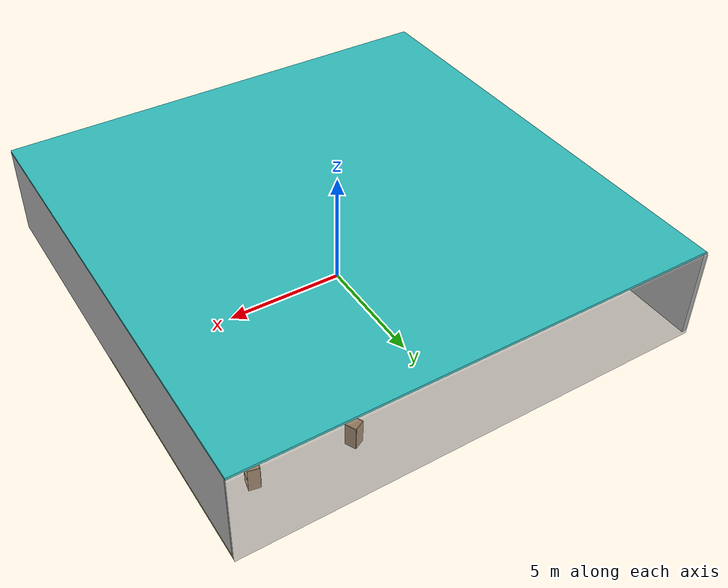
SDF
<sdf version="1.4">
 <world name="default">
  <physics type="ode">
   <max_step_size>0.001</max_step_size>
   <real_time_factor>1</real_time_factor>
   <real_time_update_rate>1000</real_time_update_rate>
   <gravity>0 0 -9.8</gravity>
  </physics>
  <scene><ambient>0.4 0.4 0.4 1</ambient><background>0.7 0.7 0.7 1</background><shadows>1</shadows></scene>
  <model name="Surrounding">
   <static>1</static>
   <link name="Ceiling">
    <collision name="Ceiling_Collision"><geometry><box><size>20 20 0.1</size></box></geometry></collision>
    <visual name="Ceiling_Visual">
     <geometry><box><size>20 20 0.1</size></box></geometry>
     <material>
      <script>
       <uri>file://media/materials/scripts/gazebo.material</uri>
       <name>Gazebo/TurquoiseGlowOutline</name>
      </script>
     </material>
    </visual>
    <pose>0 0 4.05 0 0 0</pose>
   </link>
   <link name="Wall_South">
    <collision name="Wall_South_Collision">
     <geometry><box><size>20 0 4</size></box></geometry>
     <pose>0 0 2 0 -0 0</pose>
    </collision>
    <visual name="Wall_South_Visual">
     <pose>0 0 2 0 -0 0</pose>
     <geometry><box><size>20 0 4</size></box></geometry>
     <material>
      <script><uri>file://media/materials/scripts/gazebo.material</uri><name>Gazebo/Purple</name></script>
     </material>
    </visual>
    <velocity_decay><linear>0</linear><angular>0</angular></velocity_decay>
    <pose>0 -10 0 0 -0 0</pose>
   </link>
   <link name="Wall_East">
    <collision name="Wall_21_Collision">
     <geometry><box><size>20 0 4</size></box></geometry>
     <pose>0 0 2 0 -0 0</pose>
    </collision>
    <visual name="Wall_21_Visual">
     <pose>0 0 2 0 -0 0</pose>
     <geometry><box><size>20 0 4</size></box></geometry>
     <material>
      <script><uri>file://media/materials/scripts/gazebo.material</uri><name>Gazebo/PioneerBody</name></script>
     </material>
    </visual>
    <velocity_decay><linear>0</linear><angular>0</angular></velocity_decay>
    <pose>10 0 0 0 -0 1.5708</pose>
   </link>
   <link name="Wall_North">
    <collision name="Wall_22_Collision">
     <geometry><box><size>20 0.2 4</size></box></geometry>
     <pose>0 0 2 0 -0 0</pose>
    </collision>
    <visual name="Wall_22_Visual">
     <pose>0 0 2 0 -0 0</pose>
     <geometry><box><size>20 0.2 4</size></box></geometry>
     <material>
      <script><uri>file://media/materials/scripts/gazebo.material</uri><name>Gazebo/GreyTransparent</name></script>
     </material>
    </visual>
    <velocity_decay><linear>0</linear><angular>0</angular></velocity_decay>
    <pose>0 10 0 0 -0 0</pose>
   </link>
   <link name="Wall_West">
    <collision name="Wall_23_Collision">
     <geometry><box><size>20 0.2 4</size></box></geometry>
     <pose>0 0 2 0 -0 0</pose>
    </collision>
    <visual name="Wall_23_Visual">
     <pose>0 0 2 0 -0 0</pose>
     <geometry><box><size>20 0.2 4</size></box></geometry>
     <material>
      <script><uri>file://media/materials/scripts/gazebo.material</uri><name>Gazebo/PioneerBody</name></script>
     </material>
    </visual>
    <velocity_decay><linear>0</linear><angular>0</angular></velocity_decay>
    <pose>-10 0 0 0 0 -1.5708</pose>
   </link>
   <link name="Ground_link">
    <collision name="collision">
     <pose>0 0 .05 0 -0 0</pose>
     <geometry><box><size>20 20 0.1</size></box></geometry>
    </collision>
    <visual name="visual">
     <pose>0 0 .05 0 -0 0</pose>
     <geometry><box><size>20 20 0.1</size></box></geometry>
     <material>
      <script>
       <uri>file://media/materials/scripts/gazebo.material</uri>
       <name>Gazebo/YellowTransparent</name>
      </script>
     </material>
    </visual>
   </link>
   <static>1</static>
  </model>
  <spherical_coordinates>
   <surface_model>EARTH_WGS84</surface_model>
   <latitude_deg>0</latitude_deg>
   <longitude_deg>0</longitude_deg>
   <elevation>0</elevation>
   <heading_deg>0</heading_deg>
  </spherical_coordinates>
  <light name="lightball_0" type="diffuse">
   <diffuse>0.8 0.8 0.8 1</diffuse>
   <specular>0.2 0.2 0.2 1</specular>
   <attenuation>
    <range>100</range>
    <constant>0.7</constant>
    <linear>0.01</linear>
    <quadratic>0.001</quadratic>
   </attenuation>
   <direction>-0.5 0.1 -0.9</direction>
   <pose>5.39996741589 0.641372468161 1.30068168155 0 0 0</pose>
  </light>
  <light name="lightball_1" type="diffuse">
   <diffuse>0.8 0.8 0.8 1</diffuse>
   <specular>0.2 0.2 0.2 1</specular>
   <attenuation>
    <range>100</range>
    <constant>0.7</constant>
    <linear>0.01</linear>
    <quadratic>0.001</quadratic>
   </attenuation>
   <direction>-0.5 0.1 -0.9</direction>
   <pose>-2.72451541829 6.69967901106 1.99906732025 0 0 0</pose>
  </light>
  <light name="lightball_2" type="diffuse">
   <diffuse>0.8 0.8 0.8 1</diffuse>
   <specular>0.2 0.2 0.2 1</specular>
   <attenuation>
    <range>100</range>
    <constant>0.7</constant>
    <linear>0.01</linear>
    <quadratic>0.001</quadratic>
   </attenuation>
   <direction>-0.5 0.1 -0.9</direction>
   <pose>-3.40741765099 -6.93740097523 2.97917322328 0 0 0</pose>
  </light>
  <light name="lightball_3" type="diffuse">
   <diffuse>0.8 0.8 0.8 1</diffuse>
   <specular>0.2 0.2 0.2 1</specular>
   <attenuation>
    <range>100</range>
    <constant>0.7</constant>
    <linear>0.01</linear>
    <quadratic>0.001</quadratic>
   </attenuation>
   <direction>-0.5 0.1 -0.9</direction>
   <pose>2.32718067894 -7.77799471431 3.88932591941 0 0 0</pose>
  </light>
  <light name="lightball_4" type="diffuse">
   <diffuse>0.8 0.8 0.8 1</diffuse>
   <specular>0.2 0.2 0.2 1</specular>
   <attenuation>
    <range>100</range>
    <constant>0.7</constant>
    <linear>0.01</linear>
    <quadratic>0.001</quadratic>
   </attenuation>
   <direction>-0.5 0.1 -0.9</direction>
   <pose>5.41690169276 -1.01107305077 1.38360521739 0 0 0</pose>
  </light>
  <light name="lightball_5" type="diffuse">
   <diffuse>0.8 0.8 0.8 1</diffuse>
   <specular>0.2 0.2 0.2 1</specular>
   <attenuation>
    <range>100</range>
    <constant>0.7</constant>
    <linear>0.01</linear>
    <quadratic>0.001</quadratic>
   </attenuation>
   <direction>-0.5 0.1 -0.9</direction>
   <pose>0.0736362733127 -1.8119491227 3.2174590629 0 0 0</pose>
  </light>
  <light name="lightball_6" type="diffuse">
   <diffuse>0.8 0.8 0.8 1</diffuse>
   <specular>0.2 0.2 0.2 1</specular>
   <attenuation>
    <range>100</range>
    <constant>0.7</constant>
    <linear>0.01</linear>
    <quadratic>0.001</quadratic>
   </attenuation>
   <direction>-0.5 0.1 -0.9</direction>
   <pose>0.754357523546 -5.21052361104 1.20733968797 0 0 0</pose>
  </light>
  <light name="lightball_7" type="diffuse">
   <diffuse>0.8 0.8 0.8 1</diffuse>
   <specular>0.2 0.2 0.2 1</specular>
   <attenuation>
    <range>100</range>
    <constant>0.7</constant>
    <linear>0.01</linear>
    <quadratic>0.001</quadratic>
   </attenuation>
   <direction>-0.5 0.1 -0.9</direction>
   <pose>1.04369001138 -6.66032851946 1.96549388362 0 0 0</pose>
  </light>
  <include><uri>model://cabinet</uri><pose>-5.06894675075 5.61578020875 0 0 0 0.636302996695</pose></include>
  <include>
   <uri>model://construction_cone</uri>
   <pose>-0.496998084636 -3.57336233797 0 0 0 0.812208890855</pose>
  </include>
  <include><uri>model://cabinet</uri><pose>4.15732554397 7.92591261412 0 0 0 2.02806860386</pose></include>
  <include><uri>model://cabinet</uri><pose>8.07429520239 7.6852194659 0 0 0 2.93964948654</pose></include>
 </world>
</sdf>

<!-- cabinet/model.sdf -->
<sdf version="1.5">
  <model name="cabinet">
    <static>true</static>
    <link name="cabinet_bottom_plate">
      <inertial>
        <pose>0 0 -1 0 0 0</pose>
        <inertia>
          <ixx>2.050000</ixx>
          <ixy>0</ixy>
          <ixz>0</ixz>
          <iyy>2.050000</iyy>
          <iyz>0</iyz>
          <izz>2.050000</izz>
        </inertia>
        <mass>25.000000</mass>
      </inertial>
      <collision name="cabinet_bottom_plate_geom">
        <pose>0 0 0.010000 0 0 0</pose>
        <geometry>
          <box>
            <size>0.450000 0.450000 0.020000</size>
          </box>
        </geometry>
      </collision>
      <visual name="cabinet_bottom_plate_geom_visual">
        <pose>0 0 0.010000 0 0 0</pose>
        <geometry>
          <box>
            <size>0.450000 0.450000 0.020000</size>
          </box>
        </geometry>
        <material>
          <script>
            <uri>model://media/materials/scripts/gazebo.material</uri>
            <name>Gazebo/Wood</name>
          </script>
        </material>
      </visual>
      <collision name="cabinet_bottom_plate_geom_cabinet_back_plate">
        <pose>0.235000 0 0.510000 0 0 0</pose>
        <geometry>
          <box>
            <size>0.020000 0.450000 1.020000</size>
          </box>
        </geometry>
      </collision>
      <visual name="cabinet_bottom_plate_geom_cabinet_back_plate_visual">
        <pose>0.235000 0 0.510000 0 0 0</pose>
        <geometry>
          <box>
            <size>0.020000 0.450000 1.020000</size>
          </box>
        </geometry>
        <material>
          <script>
            <uri>model://media/materials/scripts/gazebo.material</uri>
            <name>Gazebo/Wood</name>
          </script>
        </material>
      </visual>
      <collision name="cabinet_bottom_plate_geom_cabinet_left_plate">
        <pose>0 0.235000 0.510000 0 0 0</pose>
        <geometry>
          <box>
            <size>0.450000 0.020000 1.020000</size>
          </box>
        </geometry>
      </collision>
      <visual name="cabinet_bottom_plate_geom_cabinet_left_plate_visual">
        <pose>0 0.235000 0.510000 0 0 0</pose>
        <geometry>
          <box>
            <size>0.450000 0.020000 1.020000</size>
          </box>
        </geometry>
        <material>
          <script>
            <uri>model://media/materials/scripts/gazebo.material</uri>
            <name>Gazebo/Wood</name>
          </script>
        </material>
      </visual>
      <collision name="cabinet_bottom_plate_geom_cabinet_middle_plate">
        <pose>0 0 0.510000 0 0 0</pose>
        <geometry>
          <box>
            <size>0.450000 0.450000 0.020000</size>
          </box>
        </geometry>
      </collision>
      <visual name="cabinet_bottom_plate_geom_cabinet_middle_plate_visual">
        <pose>0 0 0.510000 0 0 0</pose>
        <geometry>
          <box>
            <size>0.450000 0.450000 0.020000</size>
          </box>
        </geometry>
        <material>
          <script>
            <uri>model://media/materials/scripts/gazebo.material</uri>
            <name>Gazebo/Wood</name>
          </script>
        </material>
      </visual>
      <collision name="cabinet_bottom_plate_geom_cabinet_right_plate">
        <pose>0 -0.235000 0.510000 0 0 0</pose>
        <geometry>
          <box>
            <size>0.450000 0.020000 1.020000</size>
          </box>
        </geometry>
      </collision>
      <visual name="cabinet_bottom_plate_geom_cabinet_right_plate_visual">
        <pose>0 -0.235000 0.510000 0 0 0</pose>
        <geometry>
          <box>
            <size>0.450000 0.020000 1.020000</size>
          </box>
        </geometry>
        <material>
          <script>
            <uri>model://media/materials/scripts/gazebo.material</uri>
            <name>Gazebo/Wood</name>
          </script>
        </material>
      </visual>
      <collision name="cabinet_bottom_plate_geom_cabinet_top_plate">
        <pose>0 0 1.010000 0 0 0</pose>
        <geometry>
          <box>
            <size>0.450000 0.450000 0.020000</size>
          </box>
        </geometry>
      </collision>
      <visual name="cabinet_bottom_plate_geom_cabinet_top_plate_visual">
        <pose>0 0 1.010000 0 0 0</pose>
        <geometry>
          <box>
            <size>0.450000 0.450000 0.020000</size>
          </box>
        </geometry>
        <material>
          <script>
            <uri>model://media/materials/scripts/gazebo.material</uri>
            <name>Gazebo/Wood</name>
          </script>
        </material>
      </visual>
    </link>
  </model>
</sdf>

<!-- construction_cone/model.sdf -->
<sdf version="1.5">
  <model name="Construction Cone">
    <link name="link">
      <collision name="collision">
        <geometry>
          <mesh>
            <scale>10 10 10</scale>
            <uri>file://isr-testbed/construction_cone/meshes/construction_cone.dae</uri>
          </mesh>
        </geometry>
      </collision>
      <visual name="visual">
        <geometry>
          <mesh>
            <scale>10 10 10</scale>
            <uri>file://isr-testbed/construction_cone/meshes/construction_cone.dae</uri>
          </mesh>
        </geometry>
      </visual>
    </link>
  </model>
</sdf>
